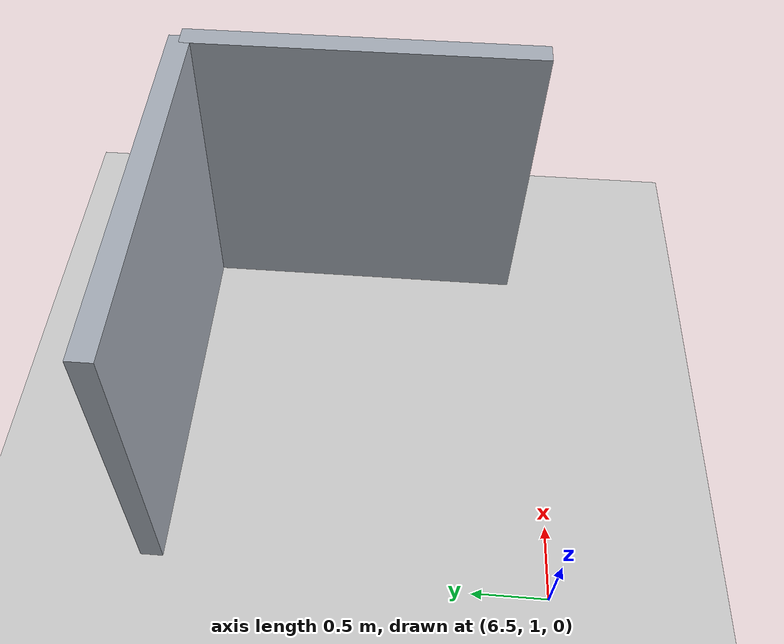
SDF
<sdf version="1.9">
 <world name="default">
  <model name="ground_plane">
   <static>true</static>
   <pose>4.95 0 -0.05 0 0 0</pose>
   <link name="body">
    <collision name="collision"><geometry><box><size>13.9 12 0.1</size></box></geometry></collision>
    <visual name="visual">
     <geometry><box><size>13.9 12 0.1</size></box></geometry>
     <material><ambient>0.8 0.8 0.8 1</ambient><diffuse>0.8 0.8 0.8 1</diffuse></material>
    </visual>
   </link>
  </model>
  <model name="room_1_2_1">
   <static>true</static>
   <pose>9.200000000000001 2.4 1.1 0 0 0</pose>
   <link name="body">
    <collision name="collision"><geometry><box><size>0.15 2.4 2.2</size></box></geometry></collision>
    <visual name="visual">
     <geometry><box><size>0.15 2.4 2.2</size></box></geometry>
     <material><ambient>0.65 0.68 0.72 1</ambient><diffuse>0.65 0.68 0.72 1</diffuse></material>
    </visual>
   </link>
  </model>
  <model name="room_end_1_2">
   <static>true</static>
   <pose>7.9 3.5999999999999996 1.1 0 0 0</pose>
   <link name="body">
    <collision name="collision"><geometry><box><size>2.6 0.15 2.2</size></box></geometry></collision>
    <visual name="visual">
     <geometry><box><size>2.6 0.15 2.2</size></box></geometry>
     <material><ambient>0.65 0.68 0.72 1</ambient><diffuse>0.65 0.68 0.72 1</diffuse></material>
    </visual>
   </link>
  </model>
 </world>
</sdf>
